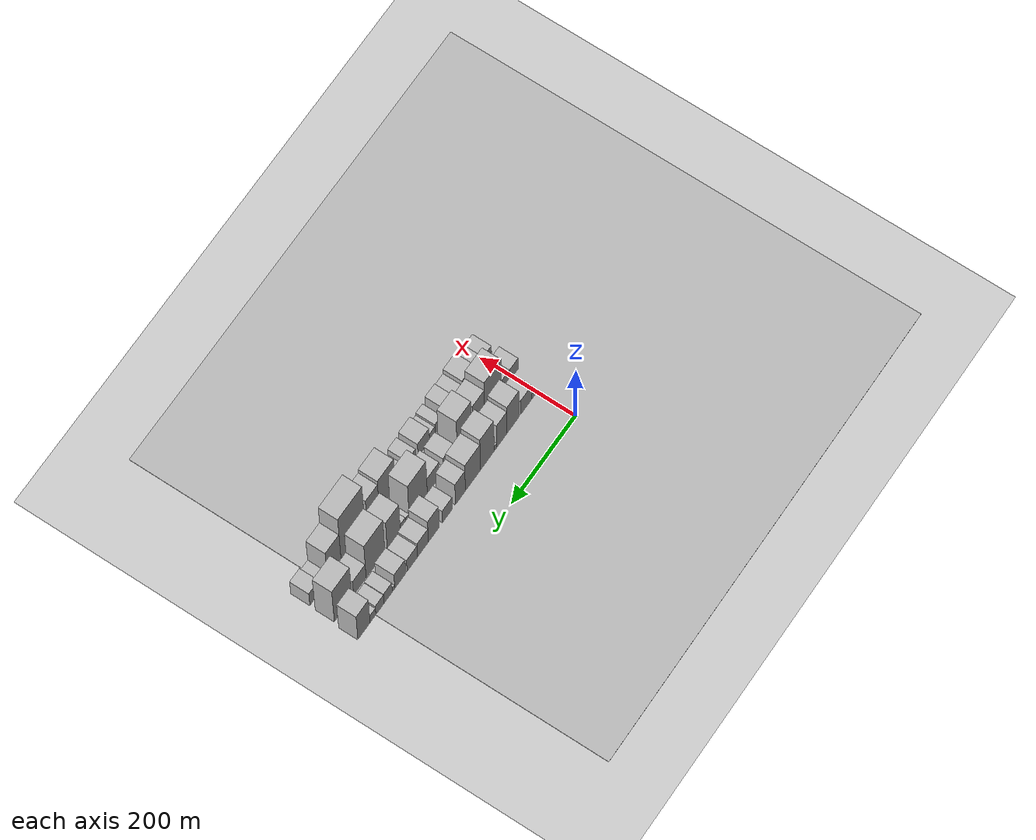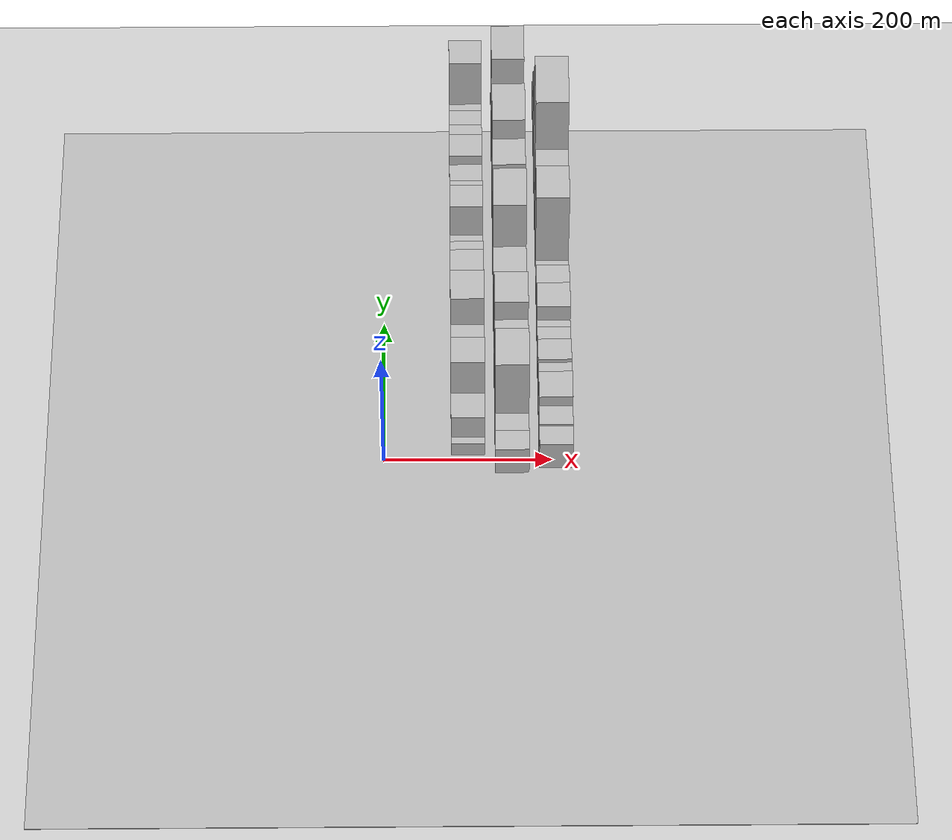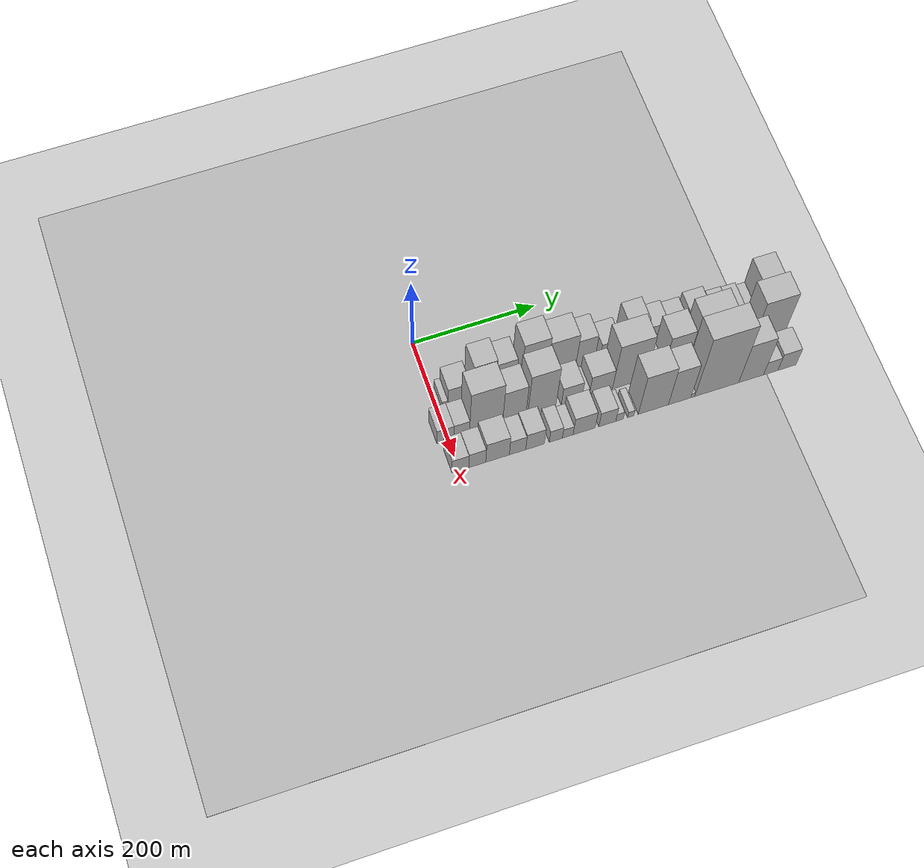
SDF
<sdf version="1.6">
 <world name="default">
  <include><name>ground_plane_1</name><uri>model://HANNAS_ground_plane</uri></include>
  <include>
   <name>ground_plane_2</name>
   <uri>model://HANNAS_ground_plane</uri>
   <pose>100 0 0  0 0 0</pose>
  </include>
  <model name="building_18">
   <static>1</static>
   <pose>100.0000 11.9810 0 0.000000 0.000000 0.000000</pose>
   <link name="link">
    <pose>0 0 12.00 0 0 0</pose>
    <collision name="collision"><geometry><box><size>40.0000 9.6409 24.0000</size></box></geometry></collision>
    <visual name="visual">
     <cast_shadows>0</cast_shadows>
     <geometry><box><size>40.0000 9.6409 24.0000</size></box></geometry>
     <material>
      <script>
       <uri>model://HANNAS_wall/materials/scripts</uri>
       <uri>model://HANNAS_wall/materials/textures</uri>
       <name>vrc/HANNAS_wall</name>
      </script>
     </material>
    </visual>
   </link>
  </model>
  <model name="building_19">
   <static>1</static>
   <pose>100.0000 34.5538 0 0.000000 0.000000 0.000000</pose>
   <link name="link">
    <pose>0 0 31.50 0 0 0</pose>
    <collision name="collision"><geometry><box><size>40.0000 35.5048 63.0000</size></box></geometry></collision>
    <visual name="visual">
     <cast_shadows>0</cast_shadows>
     <geometry><box><size>40.0000 35.5048 63.0000</size></box></geometry>
     <material>
      <script>
       <uri>model://HANNAS_wall/materials/scripts</uri>
       <uri>model://HANNAS_wall/materials/textures</uri>
       <name>vrc/HANNAS_wall</name>
      </script>
     </material>
    </visual>
   </link>
  </model>
  <model name="building_20">
   <static>1</static>
   <pose>100.0000 75.8452 0 0.000000 0.000000 0.000000</pose>
   <link name="link">
    <pose>0 0 58.50 0 0 0</pose>
    <collision name="collision"><geometry><box><size>40.0000 37.0780 117.0000</size></box></geometry></collision>
    <visual name="visual">
     <cast_shadows>0</cast_shadows>
     <geometry><box><size>40.0000 37.0780 117.0000</size></box></geometry>
     <material>
      <script>
       <uri>model://HANNAS_wall/materials/scripts</uri>
       <uri>model://HANNAS_wall/materials/textures</uri>
       <name>vrc/HANNAS_wall</name>
      </script>
     </material>
    </visual>
   </link>
  </model>
  <model name="building_21">
   <static>1</static>
   <pose>100.0000 110.5183 0 0.000000 0.000000 0.000000</pose>
   <link name="link">
    <pose>0 0 49.50 0 0 0</pose>
    <collision name="collision"><geometry><box><size>40.0000 32.2683 99.0000</size></box></geometry></collision>
    <visual name="visual">
     <cast_shadows>0</cast_shadows>
     <geometry><box><size>40.0000 32.2683 99.0000</size></box></geometry>
     <material>
      <script>
       <uri>model://HANNAS_wall/materials/scripts</uri>
       <uri>model://HANNAS_wall/materials/textures</uri>
       <name>vrc/HANNAS_wall</name>
      </script>
     </material>
    </visual>
   </link>
  </model>
  <model name="building_22">
   <static>1</static>
   <pose>100.0000 130.8560 0 0.000000 0.000000 0.000000</pose>
   <link name="link">
    <pose>0 0 10.50 0 0 0</pose>
    <collision name="collision"><geometry><box><size>40.0000 8.4071 21.0000</size></box></geometry></collision>
    <visual name="visual">
     <cast_shadows>0</cast_shadows>
     <geometry><box><size>40.0000 8.4071 21.0000</size></box></geometry>
     <material>
      <script>
       <uri>model://HANNAS_wall/materials/scripts</uri>
       <uri>model://HANNAS_wall/materials/textures</uri>
       <name>vrc/HANNAS_wall</name>
      </script>
     </material>
    </visual>
   </link>
  </model>
  <model name="building_23">
   <static>1</static>
   <pose>100.0000 156.3735 0 0.000000 0.000000 0.000000</pose>
   <link name="link">
    <pose>0 0 69.00 0 0 0</pose>
    <collision name="collision"><geometry><box><size>40.0000 42.6278 138.0000</size></box></geometry></collision>
    <visual name="visual">
     <cast_shadows>0</cast_shadows>
     <geometry><box><size>40.0000 42.6278 138.0000</size></box></geometry>
     <material>
      <script>
       <uri>model://HANNAS_wall/materials/scripts</uri>
       <uri>model://HANNAS_wall/materials/textures</uri>
       <name>vrc/HANNAS_wall</name>
      </script>
     </material>
    </visual>
   </link>
  </model>
  <model name="building_24">
   <static>1</static>
   <pose>100.0000 201.0394 0 0.000000 0.000000 0.000000</pose>
   <link name="link">
    <pose>0 0 58.50 0 0 0</pose>
    <collision name="collision"><geometry><box><size>40.0000 46.7040 117.0000</size></box></geometry></collision>
    <visual name="visual">
     <cast_shadows>0</cast_shadows>
     <geometry><box><size>40.0000 46.7040 117.0000</size></box></geometry>
     <material>
      <script>
       <uri>model://HANNAS_wall/materials/scripts</uri>
       <uri>model://HANNAS_wall/materials/textures</uri>
       <name>vrc/HANNAS_wall</name>
      </script>
     </material>
    </visual>
   </link>
  </model>
  <model name="building_25">
   <static>1</static>
   <pose>100.0000 239.8591 0 0.000000 0.000000 0.000000</pose>
   <link name="link">
    <pose>0 0 46.50 0 0 0</pose>
    <collision name="collision"><geometry><box><size>40.0000 30.9353 93.0000</size></box></geometry></collision>
    <visual name="visual">
     <cast_shadows>0</cast_shadows>
     <geometry><box><size>40.0000 30.9353 93.0000</size></box></geometry>
     <material>
      <script>
       <uri>model://HANNAS_wall/materials/scripts</uri>
       <uri>model://HANNAS_wall/materials/textures</uri>
       <name>vrc/HANNAS_wall</name>
      </script>
     </material>
    </visual>
   </link>
  </model>
  <model name="building_26">
   <static>1</static>
   <pose>100.0000 279.8218 0 0.000000 0.000000 0.000000</pose>
   <link name="link">
    <pose>0 0 27.00 0 0 0</pose>
    <collision name="collision"><geometry><box><size>40.0000 30.9903 54.0000</size></box></geometry></collision>
    <visual name="visual">
     <cast_shadows>0</cast_shadows>
     <geometry><box><size>40.0000 30.9903 54.0000</size></box></geometry>
     <material>
      <script>
       <uri>model://HANNAS_wall/materials/scripts</uri>
       <uri>model://HANNAS_wall/materials/textures</uri>
       <name>vrc/HANNAS_wall</name>
      </script>
     </material>
    </visual>
   </link>
  </model>
  <model name="building_27">
   <static>1</static>
   <pose>100.0000 322.0922 0 0.000000 0.000000 0.000000</pose>
   <link name="link">
    <pose>0 0 48.00 0 0 0</pose>
    <collision name="collision"><geometry><box><size>40.0000 33.5505 96.0000</size></box></geometry></collision>
    <visual name="visual">
     <cast_shadows>0</cast_shadows>
     <geometry><box><size>40.0000 33.5505 96.0000</size></box></geometry>
     <material>
      <script>
       <uri>model://HANNAS_wall/materials/scripts</uri>
       <uri>model://HANNAS_wall/materials/textures</uri>
       <name>vrc/HANNAS_wall</name>
      </script>
     </material>
    </visual>
   </link>
  </model>
  <model name="building_28">
   <static>1</static>
   <pose>100.0000 355.6027 0 0.000000 0.000000 0.000000</pose>
   <link name="link">
    <pose>0 0 31.50 0 0 0</pose>
    <collision name="collision"><geometry><box><size>40.0000 33.4706 63.0000</size></box></geometry></collision>
    <visual name="visual">
     <cast_shadows>0</cast_shadows>
     <geometry><box><size>40.0000 33.4706 63.0000</size></box></geometry>
     <material>
      <script>
       <uri>model://HANNAS_wall/materials/scripts</uri>
       <uri>model://HANNAS_wall/materials/textures</uri>
       <name>vrc/HANNAS_wall</name>
      </script>
     </material>
    </visual>
   </link>
  </model>
  <model name="building_29">
   <static>1</static>
   <pose>100.0000 388.4130 0 0.000000 0.000000 0.000000</pose>
   <link name="link">
    <pose>0 0 27.00 0 0 0</pose>
    <collision name="collision"><geometry><box><size>40.0000 32.1499 54.0000</size></box></geometry></collision>
    <visual name="visual">
     <cast_shadows>0</cast_shadows>
     <geometry><box><size>40.0000 32.1499 54.0000</size></box></geometry>
     <material>
      <script>
       <uri>model://HANNAS_wall/materials/scripts</uri>
       <uri>model://HANNAS_wall/materials/textures</uri>
       <name>vrc/HANNAS_wall</name>
      </script>
     </material>
    </visual>
   </link>
  </model>
  <model name="building_30">
   <static>1</static>
   <pose>100.0000 425.3685 0 0.000000 0.000000 0.000000</pose>
   <link name="link">
    <pose>0 0 33.00 0 0 0</pose>
    <collision name="collision"><geometry><box><size>40.0000 33.7612 66.0000</size></box></geometry></collision>
    <visual name="visual">
     <cast_shadows>0</cast_shadows>
     <geometry><box><size>40.0000 33.7612 66.0000</size></box></geometry>
     <material>
      <script>
       <uri>model://HANNAS_wall/materials/scripts</uri>
       <uri>model://HANNAS_wall/materials/textures</uri>
       <name>vrc/HANNAS_wall</name>
      </script>
     </material>
    </visual>
   </link>
  </model>
  <model name="building_31">
   <static>1</static>
   <pose>100.0000 445.9851 0 0.000000 0.000000 0.000000</pose>
   <link name="link">
    <pose>0 0 9.00 0 0 0</pose>
    <collision name="collision"><geometry><box><size>40.0000 7.4719 18.0000</size></box></geometry></collision>
    <visual name="visual">
     <cast_shadows>0</cast_shadows>
     <geometry><box><size>40.0000 7.4719 18.0000</size></box></geometry>
     <material>
      <script>
       <uri>model://HANNAS_wall/materials/scripts</uri>
       <uri>model://HANNAS_wall/materials/textures</uri>
       <name>vrc/HANNAS_wall</name>
      </script>
     </material>
    </visual>
   </link>
  </model>
  <model name="building_32">
   <static>1</static>
   <pose>100.0000 462.2591 0 0.000000 0.000000 0.000000</pose>
   <link name="link">
    <pose>0 0 22.50 0 0 0</pose>
    <collision name="collision"><geometry><box><size>40.0000 25.0761 45.0000</size></box></geometry></collision>
    <visual name="visual">
     <cast_shadows>0</cast_shadows>
     <geometry><box><size>40.0000 25.0761 45.0000</size></box></geometry>
     <material>
      <script>
       <uri>model://HANNAS_wall/materials/scripts</uri>
       <uri>model://HANNAS_wall/materials/textures</uri>
       <name>vrc/HANNAS_wall</name>
      </script>
     </material>
    </visual>
   </link>
  </model>
  <model name="building_33">
   <static>1</static>
   <pose>100.0000 487.3884 0 0.000000 0.000000 0.000000</pose>
   <link name="link">
    <pose>0 0 21.00 0 0 0</pose>
    <collision name="collision"><geometry><box><size>40.0000 25.1826 42.0000</size></box></geometry></collision>
    <visual name="visual">
     <cast_shadows>0</cast_shadows>
     <geometry><box><size>40.0000 25.1826 42.0000</size></box></geometry>
     <material>
      <script>
       <uri>model://HANNAS_wall/materials/scripts</uri>
       <uri>model://HANNAS_wall/materials/textures</uri>
       <name>vrc/HANNAS_wall</name>
      </script>
     </material>
    </visual>
   </link>
  </model>
  <model name="building_34">
   <static>1</static>
   <pose>100.0000 508.7303 0 0.000000 0.000000 0.000000</pose>
   <link name="link">
    <pose>0 0 16.50 0 0 0</pose>
    <collision name="collision"><geometry><box><size>40.0000 17.5012 33.0000</size></box></geometry></collision>
    <visual name="visual">
     <cast_shadows>0</cast_shadows>
     <geometry><box><size>40.0000 17.5012 33.0000</size></box></geometry>
     <material>
      <script>
       <uri>model://HANNAS_wall/materials/scripts</uri>
       <uri>model://HANNAS_wall/materials/textures</uri>
       <name>vrc/HANNAS_wall</name>
      </script>
     </material>
    </visual>
   </link>
  </model>
  <model name="building_35">
   <static>1</static>
   <pose>100.0000 536.0567 0 0.000000 0.000000 0.000000</pose>
   <link name="link">
    <pose>0 0 55.50 0 0 0</pose>
    <collision name="collision"><geometry><box><size>40.0000 37.1515 111.0000</size></box></geometry></collision>
    <visual name="visual">
     <cast_shadows>0</cast_shadows>
     <geometry><box><size>40.0000 37.1515 111.0000</size></box></geometry>
     <material>
      <script>
       <uri>model://HANNAS_wall/materials/scripts</uri>
       <uri>model://HANNAS_wall/materials/textures</uri>
       <name>vrc/HANNAS_wall</name>
      </script>
     </material>
    </visual>
   </link>
  </model>
  <model name="building_53">
   <static>1</static>
   <pose>152.0000 -4.9689 0 0.000000 0.000000 0.000000</pose>
   <link name="link">
    <pose>0 0 24.00 0 0 0</pose>
    <collision name="collision"><geometry><box><size>40.0000 27.3143 48.0000</size></box></geometry></collision>
    <visual name="visual">
     <cast_shadows>0</cast_shadows>
     <geometry><box><size>40.0000 27.3143 48.0000</size></box></geometry>
     <material>
      <script>
       <uri>model://HANNAS_wall/materials/scripts</uri>
       <uri>model://HANNAS_wall/materials/textures</uri>
       <name>vrc/HANNAS_wall</name>
      </script>
     </material>
    </visual>
   </link>
  </model>
  <model name="building_54">
   <static>1</static>
   <pose>152.0000 21.2278 0 0.000000 0.000000 0.000000</pose>
   <link name="link">
    <pose>0 0 24.00 0 0 0</pose>
    <collision name="collision"><geometry><box><size>40.0000 25.0791 48.0000</size></box></geometry></collision>
    <visual name="visual">
     <cast_shadows>0</cast_shadows>
     <geometry><box><size>40.0000 25.0791 48.0000</size></box></geometry>
     <material>
      <script>
       <uri>model://HANNAS_wall/materials/scripts</uri>
       <uri>model://HANNAS_wall/materials/textures</uri>
       <name>vrc/HANNAS_wall</name>
      </script>
     </material>
    </visual>
   </link>
  </model>
  <model name="building_55">
   <static>1</static>
   <pose>152.0000 60.3407 0 0.000000 0.000000 0.000000</pose>
   <link name="link">
    <pose>0 0 72.00 0 0 0</pose>
    <collision name="collision"><geometry><box><size>40.0000 53.1468 144.0000</size></box></geometry></collision>
    <visual name="visual">
     <cast_shadows>0</cast_shadows>
     <geometry><box><size>40.0000 53.1468 144.0000</size></box></geometry>
     <material>
      <script>
       <uri>model://HANNAS_wall/materials/scripts</uri>
       <uri>model://HANNAS_wall/materials/textures</uri>
       <name>vrc/HANNAS_wall</name>
      </script>
     </material>
    </visual>
   </link>
  </model>
  <model name="building_56">
   <static>1</static>
   <pose>152.0000 105.6011 0 0.000000 0.000000 0.000000</pose>
   <link name="link">
    <pose>0 0 55.50 0 0 0</pose>
    <collision name="collision"><geometry><box><size>40.0000 37.3741 111.0000</size></box></geometry></collision>
    <visual name="visual">
     <cast_shadows>0</cast_shadows>
     <geometry><box><size>40.0000 37.3741 111.0000</size></box></geometry>
     <material>
      <script>
       <uri>model://HANNAS_wall/materials/scripts</uri>
       <uri>model://HANNAS_wall/materials/textures</uri>
       <name>vrc/HANNAS_wall</name>
      </script>
     </material>
    </visual>
   </link>
  </model>
  <model name="building_57">
   <static>1</static>
   <pose>152.0000 150.0815 0 0.000000 0.000000 0.000000</pose>
   <link name="link">
    <pose>0 0 70.50 0 0 0</pose>
    <collision name="collision"><geometry><box><size>40.0000 45.5866 141.0000</size></box></geometry></collision>
    <visual name="visual">
     <cast_shadows>0</cast_shadows>
     <geometry><box><size>40.0000 45.5866 141.0000</size></box></geometry>
     <material>
      <script>
       <uri>model://HANNAS_wall/materials/scripts</uri>
       <uri>model://HANNAS_wall/materials/textures</uri>
       <name>vrc/HANNAS_wall</name>
      </script>
     </material>
    </visual>
   </link>
  </model>
  <model name="building_58">
   <static>1</static>
   <pose>152.0000 198.7136 0 0.000000 0.000000 0.000000</pose>
   <link name="link">
    <pose>0 0 30.00 0 0 0</pose>
    <collision name="collision"><geometry><box><size>40.0000 33.6777 60.0000</size></box></geometry></collision>
    <visual name="visual">
     <cast_shadows>0</cast_shadows>
     <geometry><box><size>40.0000 33.6777 60.0000</size></box></geometry>
     <material>
      <script>
       <uri>model://HANNAS_wall/materials/scripts</uri>
       <uri>model://HANNAS_wall/materials/textures</uri>
       <name>vrc/HANNAS_wall</name>
      </script>
     </material>
    </visual>
   </link>
  </model>
  <model name="building_59">
   <static>1</static>
   <pose>152.0000 221.4203 0 0.000000 0.000000 0.000000</pose>
   <link name="link">
    <pose>0 0 13.50 0 0 0</pose>
    <collision name="collision"><geometry><box><size>40.0000 11.7356 27.0000</size></box></geometry></collision>
    <visual name="visual">
     <cast_shadows>0</cast_shadows>
     <geometry><box><size>40.0000 11.7356 27.0000</size></box></geometry>
     <material>
      <script>
       <uri>model://HANNAS_wall/materials/scripts</uri>
       <uri>model://HANNAS_wall/materials/textures</uri>
       <name>vrc/HANNAS_wall</name>
      </script>
     </material>
    </visual>
   </link>
  </model>
  <model name="building_60">
   <static>1</static>
   <pose>152.0000 246.4026 0 0.000000 0.000000 0.000000</pose>
   <link name="link">
    <pose>0 0 34.50 0 0 0</pose>
    <collision name="collision"><geometry><box><size>40.0000 38.2290 69.0000</size></box></geometry></collision>
    <visual name="visual">
     <cast_shadows>0</cast_shadows>
     <geometry><box><size>40.0000 38.2290 69.0000</size></box></geometry>
     <material>
      <script>
       <uri>model://HANNAS_wall/materials/scripts</uri>
       <uri>model://HANNAS_wall/materials/textures</uri>
       <name>vrc/HANNAS_wall</name>
      </script>
     </material>
    </visual>
   </link>
  </model>
  <model name="building_61">
   <static>1</static>
   <pose>152.0000 293.4774 0 0.000000 0.000000 0.000000</pose>
   <link name="link">
    <pose>0 0 75.00 0 0 0</pose>
    <collision name="collision"><geometry><box><size>40.0000 55.9206 150.0000</size></box></geometry></collision>
    <visual name="visual">
     <cast_shadows>0</cast_shadows>
     <geometry><box><size>40.0000 55.9206 150.0000</size></box></geometry>
     <material>
      <script>
       <uri>model://HANNAS_wall/materials/scripts</uri>
       <uri>model://HANNAS_wall/materials/textures</uri>
       <name>vrc/HANNAS_wall</name>
      </script>
     </material>
    </visual>
   </link>
  </model>
  <model name="building_62">
   <static>1</static>
   <pose>152.0000 327.0150 0 0.000000 0.000000 0.000000</pose>
   <link name="link">
    <pose>0 0 12.00 0 0 0</pose>
    <collision name="collision"><geometry><box><size>40.0000 11.1547 24.0000</size></box></geometry></collision>
    <visual name="visual">
     <cast_shadows>0</cast_shadows>
     <geometry><box><size>40.0000 11.1547 24.0000</size></box></geometry>
     <material>
      <script>
       <uri>model://HANNAS_wall/materials/scripts</uri>
       <uri>model://HANNAS_wall/materials/textures</uri>
       <name>vrc/HANNAS_wall</name>
      </script>
     </material>
    </visual>
   </link>
  </model>
  <model name="building_63">
   <static>1</static>
   <pose>152.0000 340.6654 0 0.000000 0.000000 0.000000</pose>
   <link name="link">
    <pose>0 0 15.00 0 0 0</pose>
    <collision name="collision"><geometry><box><size>40.0000 16.1462 30.0000</size></box></geometry></collision>
    <visual name="visual">
     <cast_shadows>0</cast_shadows>
     <geometry><box><size>40.0000 16.1462 30.0000</size></box></geometry>
     <material>
      <script>
       <uri>model://HANNAS_wall/materials/scripts</uri>
       <uri>model://HANNAS_wall/materials/textures</uri>
       <name>vrc/HANNAS_wall</name>
      </script>
     </material>
    </visual>
   </link>
  </model>
  <model name="building_64">
   <static>1</static>
   <pose>152.0000 368.9221 0 0.000000 0.000000 0.000000</pose>
   <link name="link">
    <pose>0 0 61.50 0 0 0</pose>
    <collision name="collision"><geometry><box><size>40.0000 40.3670 123.0000</size></box></geometry></collision>
    <visual name="visual">
     <cast_shadows>0</cast_shadows>
     <geometry><box><size>40.0000 40.3670 123.0000</size></box></geometry>
     <material>
      <script>
       <uri>model://HANNAS_wall/materials/scripts</uri>
       <uri>model://HANNAS_wall/materials/textures</uri>
       <name>vrc/HANNAS_wall</name>
      </script>
     </material>
    </visual>
   </link>
  </model>
  <model name="building_65">
   <static>1</static>
   <pose>152.0000 424.7307 0 0.000000 0.000000 0.000000</pose>
   <link name="link">
    <pose>0 0 75.00 0 0 0</pose>
    <collision name="collision"><geometry><box><size>40.0000 57.2501 150.0000</size></box></geometry></collision>
    <visual name="visual">
     <cast_shadows>0</cast_shadows>
     <geometry><box><size>40.0000 57.2501 150.0000</size></box></geometry>
     <material>
      <script>
       <uri>model://HANNAS_wall/materials/scripts</uri>
       <uri>model://HANNAS_wall/materials/textures</uri>
       <name>vrc/HANNAS_wall</name>
      </script>
     </material>
    </visual>
   </link>
  </model>
  <model name="building_66">
   <static>1</static>
   <pose>152.0000 472.5364 0 0.000000 0.000000 0.000000</pose>
   <link name="link">
    <pose>0 0 33.00 0 0 0</pose>
    <collision name="collision"><geometry><box><size>40.0000 38.3613 66.0000</size></box></geometry></collision>
    <visual name="visual">
     <cast_shadows>0</cast_shadows>
     <geometry><box><size>40.0000 38.3613 66.0000</size></box></geometry>
     <material>
      <script>
       <uri>model://HANNAS_wall/materials/scripts</uri>
       <uri>model://HANNAS_wall/materials/textures</uri>
       <name>vrc/HANNAS_wall</name>
      </script>
     </material>
    </visual>
   </link>
  </model>
  <model name="building_67">
   <static>1</static>
   <pose>152.0000 523.3590 0 0.000000 0.000000 0.000000</pose>
   <link name="link">
    <pose>0 0 72.00 0 0 0</pose>
    <collision name="collision"><geometry><box><size>40.0000 53.2840 144.0000</size></box></geometry></collision>
    <visual name="visual">
     <cast_shadows>0</cast_shadows>
     <geometry><box><size>40.0000 53.2840 144.0000</size></box></geometry>
     <material>
      <script>
       <uri>model://HANNAS_wall/materials/scripts</uri>
       <uri>model://HANNAS_wall/materials/textures</uri>
       <name>vrc/HANNAS_wall</name>
      </script>
     </material>
    </visual>
   </link>
  </model>
  <model name="building_85">
   <static>1</static>
   <pose>204.0000 1.1885 0 0.000000 0.000000 0.000000</pose>
   <link name="link">
    <pose>0 0 24.00 0 0 0</pose>
    <collision name="collision"><geometry><box><size>40.0000 26.7398 48.0000</size></box></geometry></collision>
    <visual name="visual">
     <cast_shadows>0</cast_shadows>
     <geometry><box><size>40.0000 26.7398 48.0000</size></box></geometry>
     <material>
      <script>
       <uri>model://HANNAS_wall/materials/scripts</uri>
       <uri>model://HANNAS_wall/materials/textures</uri>
       <name>vrc/HANNAS_wall</name>
      </script>
     </material>
    </visual>
   </link>
  </model>
  <model name="building_86">
   <static>1</static>
   <pose>204.0000 28.0335 0 0.000000 0.000000 0.000000</pose>
   <link name="link">
    <pose>0 0 25.50 0 0 0</pose>
    <collision name="collision"><geometry><box><size>40.0000 26.9501 51.0000</size></box></geometry></collision>
    <visual name="visual">
     <cast_shadows>0</cast_shadows>
     <geometry><box><size>40.0000 26.9501 51.0000</size></box></geometry>
     <material>
      <script>
       <uri>model://HANNAS_wall/materials/scripts</uri>
       <uri>model://HANNAS_wall/materials/textures</uri>
       <name>vrc/HANNAS_wall</name>
      </script>
     </material>
    </visual>
   </link>
  </model>
  <model name="building_87">
   <static>1</static>
   <pose>204.0000 60.3993 0 0.000000 0.000000 0.000000</pose>
   <link name="link">
    <pose>0 0 34.50 0 0 0</pose>
    <collision name="collision"><geometry><box><size>40.0000 37.7816 69.0000</size></box></geometry></collision>
    <visual name="visual">
     <cast_shadows>0</cast_shadows>
     <geometry><box><size>40.0000 37.7816 69.0000</size></box></geometry>
     <material>
      <script>
       <uri>model://HANNAS_wall/materials/scripts</uri>
       <uri>model://HANNAS_wall/materials/textures</uri>
       <name>vrc/HANNAS_wall</name>
      </script>
     </material>
    </visual>
   </link>
  </model>
  <model name="building_88">
   <static>1</static>
   <pose>204.0000 92.4048 0 0.000000 0.000000 0.000000</pose>
   <link name="link">
    <pose>0 0 25.50 0 0 0</pose>
    <collision name="collision"><geometry><box><size>40.0000 26.2293 51.0000</size></box></geometry></collision>
    <visual name="visual">
     <cast_shadows>0</cast_shadows>
     <geometry><box><size>40.0000 26.2293 51.0000</size></box></geometry>
     <material>
      <script>
       <uri>model://HANNAS_wall/materials/scripts</uri>
       <uri>model://HANNAS_wall/materials/textures</uri>
       <name>vrc/HANNAS_wall</name>
      </script>
     </material>
    </visual>
   </link>
  </model>
  <model name="building_89">
   <static>1</static>
   <pose>204.0000 120.4891 0 0.000000 0.000000 0.000000</pose>
   <link name="link">
    <pose>0 0 28.50 0 0 0</pose>
    <collision name="collision"><geometry><box><size>40.0000 29.9392 57.0000</size></box></geometry></collision>
    <visual name="visual">
     <cast_shadows>0</cast_shadows>
     <geometry><box><size>40.0000 29.9392 57.0000</size></box></geometry>
     <material>
      <script>
       <uri>model://HANNAS_wall/materials/scripts</uri>
       <uri>model://HANNAS_wall/materials/textures</uri>
       <name>vrc/HANNAS_wall</name>
      </script>
     </material>
    </visual>
   </link>
  </model>
  <model name="building_90">
   <static>1</static>
   <pose>204.0000 154.0068 0 0.000000 0.000000 0.000000</pose>
   <link name="link">
    <pose>0 0 21.00 0 0 0</pose>
    <collision name="collision"><geometry><box><size>40.0000 21.0963 42.0000</size></box></geometry></collision>
    <visual name="visual">
     <cast_shadows>0</cast_shadows>
     <geometry><box><size>40.0000 21.0963 42.0000</size></box></geometry>
     <material>
      <script>
       <uri>model://HANNAS_wall/materials/scripts</uri>
       <uri>model://HANNAS_wall/materials/textures</uri>
       <name>vrc/HANNAS_wall</name>
      </script>
     </material>
    </visual>
   </link>
  </model>
  <model name="building_91">
   <static>1</static>
   <pose>204.0000 173.1728 0 0.000000 0.000000 0.000000</pose>
   <link name="link">
    <pose>0 0 16.50 0 0 0</pose>
    <collision name="collision"><geometry><box><size>40.0000 17.2356 33.0000</size></box></geometry></collision>
    <visual name="visual">
     <cast_shadows>0</cast_shadows>
     <geometry><box><size>40.0000 17.2356 33.0000</size></box></geometry>
     <material>
      <script>
       <uri>model://HANNAS_wall/materials/scripts</uri>
       <uri>model://HANNAS_wall/materials/textures</uri>
       <name>vrc/HANNAS_wall</name>
      </script>
     </material>
    </visual>
   </link>
  </model>
  <model name="building_92">
   <static>1</static>
   <pose>204.0000 199.7344 0 0.000000 0.000000 0.000000</pose>
   <link name="link">
    <pose>0 0 30.00 0 0 0</pose>
    <collision name="collision"><geometry><box><size>40.0000 35.8876 60.0000</size></box></geometry></collision>
    <visual name="visual">
     <cast_shadows>0</cast_shadows>
     <geometry><box><size>40.0000 35.8876 60.0000</size></box></geometry>
     <material>
      <script>
       <uri>model://HANNAS_wall/materials/scripts</uri>
       <uri>model://HANNAS_wall/materials/textures</uri>
       <name>vrc/HANNAS_wall</name>
      </script>
     </material>
    </visual>
   </link>
  </model>
  <model name="building_93">
   <static>1</static>
   <pose>204.0000 237.5069 0 0.000000 0.000000 0.000000</pose>
   <link name="link">
    <pose>0 0 25.50 0 0 0</pose>
    <collision name="collision"><geometry><box><size>40.0000 27.6574 51.0000</size></box></geometry></collision>
    <visual name="visual">
     <cast_shadows>0</cast_shadows>
     <geometry><box><size>40.0000 27.6574 51.0000</size></box></geometry>
     <material>
      <script>
       <uri>model://HANNAS_wall/materials/scripts</uri>
       <uri>model://HANNAS_wall/materials/textures</uri>
       <name>vrc/HANNAS_wall</name>
      </script>
     </material>
    </visual>
   </link>
  </model>
  <model name="building_94">
   <static>1</static>
   <pose>204.0000 257.3880 0 0.000000 0.000000 0.000000</pose>
   <link name="link">
    <pose>0 0 13.50 0 0 0</pose>
    <collision name="collision"><geometry><box><size>40.0000 12.1048 27.0000</size></box></geometry></collision>
    <visual name="visual">
     <cast_shadows>0</cast_shadows>
     <geometry><box><size>40.0000 12.1048 27.0000</size></box></geometry>
     <material>
      <script>
       <uri>model://HANNAS_wall/materials/scripts</uri>
       <uri>model://HANNAS_wall/materials/textures</uri>
       <name>vrc/HANNAS_wall</name>
      </script>
     </material>
    </visual>
   </link>
  </model>
  <model name="building_95">
   <static>1</static>
   <pose>204.0000 275.6872 0 0.000000 0.000000 0.000000</pose>
   <link name="link">
    <pose>0 0 10.50 0 0 0</pose>
    <collision name="collision"><geometry><box><size>40.0000 10.4936 21.0000</size></box></geometry></collision>
    <visual name="visual">
     <cast_shadows>0</cast_shadows>
     <geometry><box><size>40.0000 10.4936 21.0000</size></box></geometry>
     <material>
      <script>
       <uri>model://HANNAS_wall/materials/scripts</uri>
       <uri>model://HANNAS_wall/materials/textures</uri>
       <name>vrc/HANNAS_wall</name>
      </script>
     </material>
    </visual>
   </link>
  </model>
  <model name="building_96">
   <static>1</static>
   <pose>204.0000 312.5793 0 0.000000 0.000000 0.000000</pose>
   <link name="link">
    <pose>0 0 67.50 0 0 0</pose>
    <collision name="collision"><geometry><box><size>40.0000 49.2906 135.0000</size></box></geometry></collision>
    <visual name="visual">
     <cast_shadows>0</cast_shadows>
     <geometry><box><size>40.0000 49.2906 135.0000</size></box></geometry>
     <material>
      <script>
       <uri>model://HANNAS_wall/materials/scripts</uri>
       <uri>model://HANNAS_wall/materials/textures</uri>
       <name>vrc/HANNAS_wall</name>
      </script>
     </material>
    </visual>
   </link>
  </model>
  <model name="building_97">
   <static>1</static>
   <pose>204.0000 355.7212 0 0.000000 0.000000 0.000000</pose>
   <link name="link">
    <pose>0 0 60.00 0 0 0</pose>
    <collision name="collision"><geometry><box><size>40.0000 36.9934 120.0000</size></box></geometry></collision>
    <visual name="visual">
     <cast_shadows>0</cast_shadows>
     <geometry><box><size>40.0000 36.9934 120.0000</size></box></geometry>
     <material>
      <script>
       <uri>model://HANNAS_wall/materials/scripts</uri>
       <uri>model://HANNAS_wall/materials/textures</uri>
       <name>vrc/HANNAS_wall</name>
      </script>
     </material>
    </visual>
   </link>
  </model>
  <model name="building_98">
   <static>1</static>
   <pose>204.0000 377.4569 0 0.000000 0.000000 0.000000</pose>
   <link name="link">
    <pose>0 0 7.50 0 0 0</pose>
    <collision name="collision"><geometry><box><size>40.0000 6.4779 15.0000</size></box></geometry></collision>
    <visual name="visual">
     <cast_shadows>0</cast_shadows>
     <geometry><box><size>40.0000 6.4779 15.0000</size></box></geometry>
     <material>
      <script>
       <uri>model://HANNAS_wall/materials/scripts</uri>
       <uri>model://HANNAS_wall/materials/textures</uri>
       <name>vrc/HANNAS_wall</name>
      </script>
     </material>
    </visual>
   </link>
  </model>
  <model name="building_99">
   <static>1</static>
   <pose>204.0000 416.9807 0 0.000000 0.000000 0.000000</pose>
   <link name="link">
    <pose>0 0 100.50 0 0 0</pose>
    <collision name="collision"><geometry><box><size>40.0000 72.5697 201.0000</size></box></geometry></collision>
    <visual name="visual">
     <cast_shadows>0</cast_shadows>
     <geometry><box><size>40.0000 72.5697 201.0000</size></box></geometry>
     <material>
      <script>
       <uri>model://HANNAS_wall/materials/scripts</uri>
       <uri>model://HANNAS_wall/materials/textures</uri>
       <name>vrc/HANNAS_wall</name>
      </script>
     </material>
    </visual>
   </link>
  </model>
  <model name="building_100">
   <static>1</static>
   <pose>204.0000 474.0057 0 0.000000 0.000000 0.000000</pose>
   <link name="link">
    <pose>0 0 66.00 0 0 0</pose>
    <collision name="collision"><geometry><box><size>40.0000 41.4803 132.0000</size></box></geometry></collision>
    <visual name="visual">
     <cast_shadows>0</cast_shadows>
     <geometry><box><size>40.0000 41.4803 132.0000</size></box></geometry>
     <material>
      <script>
       <uri>model://HANNAS_wall/materials/scripts</uri>
       <uri>model://HANNAS_wall/materials/textures</uri>
       <name>vrc/HANNAS_wall</name>
      </script>
     </material>
    </visual>
   </link>
  </model>
  <model name="building_101">
   <static>1</static>
   <pose>204.0000 506.7406 0 0.000000 0.000000 0.000000</pose>
   <link name="link">
    <pose>0 0 22.50 0 0 0</pose>
    <collision name="collision"><geometry><box><size>40.0000 23.9895 45.0000</size></box></geometry></collision>
    <visual name="visual">
     <cast_shadows>0</cast_shadows>
     <geometry><box><size>40.0000 23.9895 45.0000</size></box></geometry>
     <material>
      <script>
       <uri>model://HANNAS_wall/materials/scripts</uri>
       <uri>model://HANNAS_wall/materials/textures</uri>
       <name>vrc/HANNAS_wall</name>
      </script>
     </material>
    </visual>
   </link>
  </model>
  <model name="building_102">
   <static>1</static>
   <pose>204.0000 533.7967 0 0.000000 0.000000 0.000000</pose>
   <link name="link">
    <pose>0 0 28.50 0 0 0</pose>
    <collision name="collision"><geometry><box><size>40.0000 30.1227 57.0000</size></box></geometry></collision>
    <visual name="visual">
     <cast_shadows>0</cast_shadows>
     <geometry><box><size>40.0000 30.1227 57.0000</size></box></geometry>
     <material>
      <script>
       <uri>model://HANNAS_wall/materials/scripts</uri>
       <uri>model://HANNAS_wall/materials/textures</uri>
       <name>vrc/HANNAS_wall</name>
      </script>
     </material>
    </visual>
   </link>
  </model>
 </world>
</sdf>
